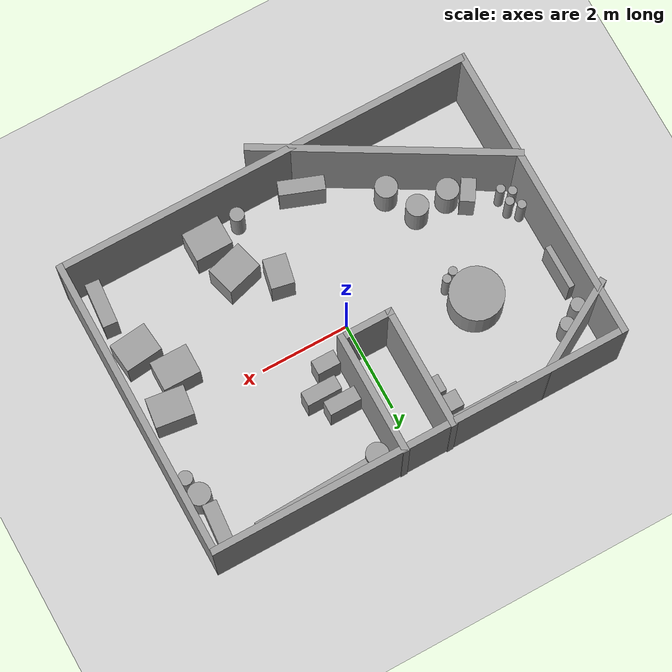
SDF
<sdf version="1.7">
 <world name="default">
  <light name="sun" type="directional">
   <pose>0 0 10 0 -0 0</pose>
   <diffuse>0.8 0.8 0.8 1</diffuse>
   <specular>0.2 0.2 0.2 1</specular>
   <attenuation>
    <range>1000</range>
    <constant>0.9</constant>
    <linear>0.01</linear>
    <quadratic>0.001</quadratic>
   </attenuation>
   <direction>-0.5 0.1 -0.9</direction>
   <spot><inner_angle>0</inner_angle><outer_angle>0</outer_angle><falloff>0</falloff></spot>
  </light>
  <model name="ground_plane">
   <static>1</static>
   <link name="link">
    <collision name="collision">
     <geometry><plane><normal>0 0 1</normal><size>100 100</size></plane></geometry>
     <surface>
      <contact><collide_bitmask>65535</collide_bitmask></contact>
      <friction><ode><mu>100</mu><mu2>50</mu2></ode></friction>
     </surface>
    </collision>
    <visual name="visual">
     <cast_shadows>0</cast_shadows>
     <geometry><plane><normal>0 0 1</normal><size>100 100</size></plane></geometry>
     <material>
      <script><uri>file://media/materials/scripts/gazebo.material</uri><name>Gazebo/Grey</name></script>
     </material>
    </visual>
   </link>
  </model>
  <gravity>0 0 -9.8</gravity>
  <magnetic_field>6e-06 2.3e-05 -4.2e-05</magnetic_field>
  <atmosphere type="adiabatic"/>
  <physics type="ode">
   <max_step_size>0.001</max_step_size>
   <real_time_factor>1</real_time_factor>
   <real_time_update_rate>1000</real_time_update_rate>
  </physics>
  <scene><ambient>0.4 0.4 0.4 1</ambient><background>0.7 0.7 0.7 1</background><shadows>1</shadows></scene>
  <spherical_coordinates>
   <surface_model>EARTH_WGS84</surface_model>
   <latitude_deg>0</latitude_deg>
   <longitude_deg>0</longitude_deg>
   <elevation>0</elevation>
   <heading_deg>0</heading_deg>
  </spherical_coordinates>
  <model name="Untitled">
   <pose>0.040154 -0.243449 0 0 -0 0</pose>
   <link name="Wall_19">
    <collision name="Wall_19_Collision">
     <geometry><box><size>9.5 0.15 2.5</size></box></geometry>
     <pose>0 0 1.25 0 -0 0</pose>
    </collision>
    <visual name="Wall_19_Visual">
     <pose>0 0 1.25 0 -0 0</pose>
     <geometry><box><size>9.5 0.15 2.5</size></box></geometry>
     <material>
      <script><uri>file://media/materials/scripts/gazebo.material</uri><name>Gazebo/Grey</name></script>
      <ambient>1 1 1 1</ambient>
     </material>
     <meta><layer>0</layer></meta>
    </visual>
    <pose>0.065155 -3.08057 0 0 -0 3.14159</pose>
   </link>
   <link name="Wall_24">
    <collision name="Wall_24_Collision">
     <geometry><box><size>6.75 0.15 2.5</size></box></geometry>
     <pose>0 0 1.25 0 -0 0</pose>
    </collision>
    <visual name="Wall_24_Visual">
     <pose>0 0 1.25 0 -0 0</pose>
     <geometry><box><size>6.75 0.15 2.5</size></box></geometry>
     <material>
      <script><uri>file://media/materials/scripts/gazebo.material</uri><name>Gazebo/Grey</name></script>
      <ambient>1 1 1 1</ambient>
     </material>
     <meta><layer>0</layer></meta>
    </visual>
    <pose>-4.60984 0.219426 0 0 -0 1.5708</pose>
   </link>
   <link name="Wall_25">
    <collision name="Wall_25_Collision">
     <geometry><box><size>9.5 0.15 2.5</size></box></geometry>
     <pose>0 0 1.25 0 -0 0</pose>
    </collision>
    <visual name="Wall_25_Visual">
     <pose>0 0 1.25 0 -0 0</pose>
     <geometry><box><size>9.5 0.15 2.5</size></box></geometry>
     <material>
      <script><uri>file://media/materials/scripts/gazebo.material</uri><name>Gazebo/Grey</name></script>
      <ambient>1 1 1 1</ambient>
     </material>
     <meta><layer>0</layer></meta>
    </visual>
    <pose>0.065155 3.51943 0 0 -0 0</pose>
   </link>
   <link name="Wall_26">
    <collision name="Wall_26_Collision">
     <geometry><box><size>6.75 0.15 2.5</size></box></geometry>
     <pose>0 0 1.25 0 -0 0</pose>
    </collision>
    <visual name="Wall_26_Visual">
     <pose>0 0 1.25 0 -0 0</pose>
     <geometry><box><size>6.75 0.15 2.5</size></box></geometry>
     <material>
      <script><uri>file://media/materials/scripts/gazebo.material</uri><name>Gazebo/Grey</name></script>
      <ambient>1 1 1 1</ambient>
     </material>
     <meta><layer>0</layer></meta>
    </visual>
    <pose>4.74015 0.219426 0 0 -0 -1.5708</pose>
   </link>
   <link name="Wall_28">
    <collision name="Wall_28_Collision">
     <geometry><box><size>2.75 0.15 2.5</size></box></geometry>
     <pose>0 0 1.25 0 -0 0</pose>
    </collision>
    <visual name="Wall_28_Visual">
     <pose>0 0 1.25 0 -0 0</pose>
     <geometry><box><size>2.75 0.15 2.5</size></box></geometry>
     <material>
      <script><uri>file://media/materials/scripts/gazebo.material</uri><name>Gazebo/Grey</name></script>
      <ambient>1 1 1 1</ambient>
     </material>
     <meta><layer>0</layer></meta>
    </visual>
    <pose>-0.655321 2.23877 0 0 -0 -1.5708</pose>
   </link>
   <link name="Wall_29">
    <collision name="Wall_29_Collision">
     <geometry><box><size>1.25 0.15 2.5</size></box></geometry>
     <pose>0 0 1.25 0 -0 0</pose>
    </collision>
    <visual name="Wall_29_Visual">
     <pose>0 0 1.25 0 -0 0</pose>
     <geometry><box><size>1.25 0.15 2.5</size></box></geometry>
     <material>
      <script><uri>file://media/materials/scripts/gazebo.material</uri><name>Gazebo/Grey</name></script>
      <ambient>1 1 1 1</ambient>
     </material>
     <meta><layer>0</layer></meta>
    </visual>
    <pose>-0.105321 0.938769 0 0 -0 0</pose>
   </link>
   <link name="Wall_30">
    <collision name="Wall_30_Collision">
     <geometry><box><size>2.75 0.15 2.5</size></box></geometry>
     <pose>0 0 1.25 0 -0 0</pose>
    </collision>
    <visual name="Wall_30_Visual">
     <pose>0 0 1.25 0 -0 0</pose>
     <geometry><box><size>2.75 0.15 2.5</size></box></geometry>
     <material>
      <script><uri>file://media/materials/scripts/gazebo.material</uri><name>Gazebo/Grey</name></script>
      <ambient>1 1 1 1</ambient>
     </material>
     <meta><layer>0</layer></meta>
    </visual>
    <pose>0.444679 2.23877 0 0 -0 1.5708</pose>
   </link>
   <link name="Wall_32">
    <collision name="Wall_32_Collision">
     <geometry><box><size>2.25 0.15 2.5</size></box></geometry>
     <pose>0 0 1.25 0 -0 0</pose>
    </collision>
    <visual name="Wall_32_Visual">
     <pose>0 0 1.25 0 -0 0</pose>
     <geometry><box><size>2.25 0.15 2.5</size></box></geometry>
     <material>
      <script><uri>file://media/materials/scripts/gazebo.material</uri><name>Gazebo/Grey</name></script>
      <ambient>1 1 1 1</ambient>
     </material>
     <meta><layer>0</layer></meta>
    </visual>
    <pose>-3.80338 2.97879 0 0 -0 -2.61799</pose>
   </link>
   <link name="Wall_34">
    <collision name="Wall_34_Collision">
     <geometry><box><size>5.75 0.15 2.5</size></box></geometry>
     <pose>0 0 1.25 0 -0 0</pose>
    </collision>
    <visual name="Wall_34_Visual">
     <pose>0 0 1.25 0 -0 0</pose>
     <geometry><box><size>5.75 0.15 2.5</size></box></geometry>
     <material>
      <script><uri>file://media/materials/scripts/gazebo.material</uri><name>Gazebo/Grey</name></script>
      <ambient>1 1 1 1</ambient>
     </material>
     <meta><layer>0</layer></meta>
    </visual>
    <pose>-2.21818 -2.11132 0 0 -0 -0.523599</pose>
   </link>
   <static>1</static>
  </model>
  <model name="unit_box">
   <pose>2.4211 3.00637 0.499918 2e-06 6.3e-05 0.031652</pose>
   <link name="link">
    <inertial>
     <mass>1</mass>
     <inertia>
      <ixx>0.166667</ixx>
      <ixy>0</ixy>
      <ixz>0</ixz>
      <iyy>0.166667</iyy>
      <iyz>0</iyz>
      <izz>0.166667</izz>
     </inertia>
    </inertial>
    <collision name="collision"><geometry><box><size>2.62096 0.261294 1</size></box></geometry></collision>
    <visual name="visual">
     <geometry><box><size>2.62096 0.261294 1</size></box></geometry>
     <material>
      <script><name>Gazebo/Grey</name><uri>file://media/materials/scripts/gazebo.material</uri></script>
     </material>
    </visual>
   </link>
  </model>
  <model name="unit_cylinder">
   <pose>-2.60289 0.898022 0.499993 -5e-06 -4e-06 -0.000322</pose>
   <link name="link">
    <inertial>
     <mass>1</mass>
     <inertia><ixx>0.145833</ixx><ixy>0</ixy><ixz>0</ixz><iyy>0.145833</iyy><iyz>0</iyz><izz>0.125</izz></inertia>
    </inertial>
    <collision name="collision">
     <geometry><cylinder><radius>0.594135</radius><length>1</length></cylinder></geometry>
    </collision>
    <visual name="visual">
     <geometry><cylinder><radius>0.594135</radius><length>1</length></cylinder></geometry>
     <material>
      <script><name>Gazebo/Grey</name><uri>file://media/materials/scripts/gazebo.material</uri></script>
     </material>
    </visual>
   </link>
  </model>
  <model name="unit_box_0">
   <pose>4.11483 -0.050991 0.499995 -2e-06 -1e-05 -0.128217</pose>
   <link name="link">
    <inertial>
     <mass>1</mass>
     <inertia>
      <ixx>0.166667</ixx>
      <ixy>0</ixy>
      <ixz>0</ixz>
      <iyy>0.166667</iyy>
      <iyz>0</iyz>
      <izz>0.166667</izz>
     </inertia>
    </inertial>
    <collision name="collision"><geometry><box><size>0.846525 0.662942 1</size></box></geometry></collision>
    <visual name="visual">
     <geometry><box><size>0.846525 0.662942 1</size></box></geometry>
     <material>
      <script><name>Gazebo/Grey</name><uri>file://media/materials/scripts/gazebo.material</uri></script>
     </material>
    </visual>
   </link>
  </model>
  <model name="unit_box_0_clone">
   <pose>3.62881 -0.730658 0.5 0 -0 -0.005144</pose>
   <link name="link">
    <inertial>
     <mass>1</mass>
     <inertia>
      <ixx>0.166667</ixx>
      <ixy>0</ixy>
      <ixz>0</ixz>
      <iyy>0.166667</iyy>
      <iyz>0</iyz>
      <izz>0.166667</izz>
     </inertia>
    </inertial>
    <collision name="collision"><geometry><box><size>0.846525 0.662942 1</size></box></geometry></collision>
    <visual name="visual">
     <geometry><box><size>0.846525 0.662942 1</size></box></geometry>
     <material>
      <script><name>Gazebo/Grey</name><uri>file://media/materials/scripts/gazebo.material</uri></script>
     </material>
    </visual>
   </link>
  </model>
  <model name="unit_box_0_clone_0">
   <pose>1.55427 -2.0112 0.5 0 -0 0.275134</pose>
   <link name="link">
    <inertial>
     <mass>1</mass>
     <inertia>
      <ixx>0.166667</ixx>
      <ixy>0</ixy>
      <ixz>0</ixz>
      <iyy>0.166667</iyy>
      <iyz>0</iyz>
      <izz>0.166667</izz>
     </inertia>
    </inertial>
    <collision name="collision"><geometry><box><size>0.846525 0.662942 1</size></box></geometry></collision>
    <visual name="visual">
     <geometry><box><size>0.846525 0.662942 1</size></box></geometry>
     <material>
      <script><name>Gazebo/Grey</name><uri>file://media/materials/scripts/gazebo.material</uri></script>
     </material>
    </visual>
   </link>
  </model>
  <model name="unit_box_0_clone_1">
   <pose>4.1453 -1.49621 0.499995 2e-06 -1e-05 0.107179</pose>
   <link name="link">
    <inertial>
     <mass>1</mass>
     <inertia>
      <ixx>0.166667</ixx>
      <ixy>0</ixy>
      <ixz>0</ixz>
      <iyy>0.166667</iyy>
      <iyz>0</iyz>
      <izz>0.166667</izz>
     </inertia>
    </inertial>
    <collision name="collision"><geometry><box><size>0.846525 0.662942 1</size></box></geometry></collision>
    <visual name="visual">
     <geometry><box><size>0.846525 0.662942 1</size></box></geometry>
     <material>
      <script><name>Gazebo/Grey</name><uri>file://media/materials/scripts/gazebo.material</uri></script>
     </material>
    </visual>
   </link>
  </model>
  <model name="unit_box_0_clone_2">
   <pose>1.75209 -2.84511 0.5 0 -0 0.005547</pose>
   <link name="link">
    <inertial>
     <mass>1</mass>
     <inertia>
      <ixx>0.166667</ixx>
      <ixy>0</ixy>
      <ixz>0</ixz>
      <iyy>0.166667</iyy>
      <iyz>0</iyz>
      <izz>0.166667</izz>
     </inertia>
    </inertial>
    <collision name="collision"><geometry><box><size>0.846525 0.662942 1</size></box></geometry></collision>
    <visual name="visual">
     <geometry><box><size>0.846525 0.662942 1</size></box></geometry>
     <material>
      <script><name>Gazebo/Grey</name><uri>file://media/materials/scripts/gazebo.material</uri></script>
     </material>
    </visual>
   </link>
  </model>
  <model name="unit_box_0_clone_3">
   <pose>0.781152 -1.50689 0.5 0 0 -0.201909</pose>
   <link name="link">
    <inertial>
     <mass>1</mass>
     <inertia>
      <ixx>0.166667</ixx>
      <ixy>0</ixy>
      <ixz>0</ixz>
      <iyy>0.166667</iyy>
      <iyz>0</iyz>
      <izz>0.166667</izz>
     </inertia>
    </inertial>
    <collision name="collision"><geometry><box><size>0.511964 0.662942 1</size></box></geometry></collision>
    <visual name="visual">
     <geometry><box><size>0.511964 0.662942 1</size></box></geometry>
     <material>
      <script><name>Gazebo/Grey</name><uri>file://media/materials/scripts/gazebo.material</uri></script>
     </material>
    </visual>
   </link>
  </model>
  <model name="unit_cylinder_0_clone">
   <pose>-3.18118 -1.36905 0.499998 -1e-06 1e-06 -1.9e-05</pose>
   <link name="link">
    <inertial>
     <mass>1</mass>
     <inertia><ixx>0.145833</ixx><ixy>0</ixy><ixz>0</ixz><iyy>0.145833</iyy><iyz>0</iyz><izz>0.125</izz></inertia>
    </inertial>
    <collision name="collision">
     <geometry><cylinder><radius>0.248018</radius><length>1</length></cylinder></geometry>
    </collision>
    <visual name="visual">
     <geometry><cylinder><radius>0.248018</radius><length>1</length></cylinder></geometry>
     <material>
      <script><name>Gazebo/Grey</name><uri>file://media/materials/scripts/gazebo.material</uri></script>
     </material>
    </visual>
   </link>
  </model>
  <model name="unit_cylinder_0_clone_0">
   <pose>-2.44992 -1.36258 0.499992 1e-06 -1e-06 -1.2e-05</pose>
   <link name="link">
    <inertial>
     <mass>1</mass>
     <inertia><ixx>0.145833</ixx><ixy>0</ixy><ixz>0</ixz><iyy>0.145833</iyy><iyz>0</iyz><izz>0.125</izz></inertia>
    </inertial>
    <collision name="collision">
     <geometry><cylinder><radius>0.248018</radius><length>1</length></cylinder></geometry>
    </collision>
    <visual name="visual">
     <geometry><cylinder><radius>0.248018</radius><length>1</length></cylinder></geometry>
     <material>
      <script><name>Gazebo/Grey</name><uri>file://media/materials/scripts/gazebo.material</uri></script>
     </material>
    </visual>
   </link>
  </model>
  <model name="unit_cylinder_0_clone_1">
   <pose>-2.07314 -2.03018 0.499992 1e-06 -1e-06 -1.9e-05</pose>
   <link name="link">
    <inertial>
     <mass>1</mass>
     <inertia><ixx>0.145833</ixx><ixy>0</ixy><ixz>0</ixz><iyy>0.145833</iyy><iyz>0</iyz><izz>0.125</izz></inertia>
    </inertial>
    <collision name="collision">
     <geometry><cylinder><radius>0.248018</radius><length>1</length></cylinder></geometry>
    </collision>
    <visual name="visual">
     <geometry><cylinder><radius>0.248018</radius><length>1</length></cylinder></geometry>
     <material>
      <script><name>Gazebo/Grey</name><uri>file://media/materials/scripts/gazebo.material</uri></script>
     </material>
    </visual>
   </link>
  </model>
  <model name="unit_box_1">
   <pose>1.2214 1.15406 0.499996 -3e-06 -9e-06 -0.00053</pose>
   <link name="link">
    <inertial>
     <mass>1</mass>
     <inertia>
      <ixx>0.166667</ixx>
      <ixy>0</ixy>
      <ixz>0</ixz>
      <iyy>0.166667</iyy>
      <iyz>0</iyz>
      <izz>0.166667</izz>
     </inertia>
    </inertial>
    <collision name="collision"><geometry><box><size>0.78735 0.321828 1</size></box></geometry></collision>
    <visual name="visual">
     <geometry><box><size>0.78735 0.321828 1</size></box></geometry>
     <material>
      <script><name>Gazebo/Grey</name><uri>file://media/materials/scripts/gazebo.material</uri></script>
     </material>
    </visual>
   </link>
  </model>
  <model name="unit_box_1_clone">
   <pose>0.854096 0.674374 0.5 0 -0 -0.00012</pose>
   <link name="link">
    <inertial>
     <mass>1</mass>
     <inertia>
      <ixx>0.166667</ixx>
      <ixy>0</ixy>
      <ixz>0</ixz>
      <iyy>0.166667</iyy>
      <iyz>0</iyz>
      <izz>0.166667</izz>
     </inertia>
    </inertial>
    <collision name="collision"><geometry><box><size>0.519182 0.321828 1</size></box></geometry></collision>
    <visual name="visual">
     <geometry><box><size>0.519182 0.321828 1</size></box></geometry>
     <material>
      <script><name>Gazebo/Grey</name><uri>file://media/materials/scripts/gazebo.material</uri></script>
     </material>
    </visual>
   </link>
  </model>
  <model name="unit_box_1_clone_0">
   <pose>0.944126 1.54933 0.5 0 -0 -5e-06</pose>
   <link name="link">
    <inertial>
     <mass>1</mass>
     <inertia>
      <ixx>0.166667</ixx>
      <ixy>0</ixy>
      <ixz>0</ixz>
      <iyy>0.166667</iyy>
      <iyz>0</iyz>
      <izz>0.166667</izz>
     </inertia>
    </inertial>
    <collision name="collision"><geometry><box><size>0.715986 0.321828 1</size></box></geometry></collision>
    <visual name="visual">
     <geometry><box><size>0.715986 0.321828 1</size></box></geometry>
     <material>
      <script><name>Gazebo/Grey</name><uri>file://media/materials/scripts/gazebo.material</uri></script>
     </material>
    </visual>
   </link>
  </model>
  <model name="unit_box_1_clone_1">
   <pose>4.38867 2.60153 0.5 1e-06 -0 1.49163</pose>
   <link name="link">
    <inertial>
     <mass>1</mass>
     <inertia>
      <ixx>0.166667</ixx>
      <ixy>0</ixy>
      <ixz>0</ixz>
      <iyy>0.166667</iyy>
      <iyz>0</iyz>
      <izz>0.166667</izz>
     </inertia>
    </inertial>
    <collision name="collision"><geometry><box><size>1 0.321828 1</size></box></geometry></collision>
    <visual name="visual">
     <geometry><box><size>1 0.321828 1</size></box></geometry>
     <material>
      <script><name>Gazebo/Grey</name><uri>file://media/materials/scripts/gazebo.material</uri></script>
     </material>
    </visual>
   </link>
  </model>
  <model name="unit_cylinder_0_clone_1_clone">
   <pose>4.44032 1.84705 0.499998 -1e-06 1e-06 -0.005717</pose>
   <link name="link">
    <inertial>
     <mass>1</mass>
     <inertia><ixx>0.145833</ixx><ixy>0</ixy><ixz>0</ixz><iyy>0.145833</iyy><iyz>0</iyz><izz>0.125</izz></inertia>
    </inertial>
    <collision name="collision">
     <geometry><cylinder><radius>0.248018</radius><length>1</length></cylinder></geometry>
    </collision>
    <visual name="visual">
     <geometry><cylinder><radius>0.248018</radius><length>1</length></cylinder></geometry>
     <material>
      <script><name>Gazebo/Grey</name><uri>file://media/materials/scripts/gazebo.material</uri></script>
     </material>
    </visual>
   </link>
  </model>
  <model name="unit_cylinder_0_clone_1_clone_0">
   <pose>0.853981 2.87092 0.499992 2e-06 -1e-06 -1.9e-05</pose>
   <link name="link">
    <inertial>
     <mass>1</mass>
     <inertia><ixx>0.145833</ixx><ixy>0</ixy><ixz>0</ixz><iyy>0.145833</iyy><iyz>0</iyz><izz>0.125</izz></inertia>
    </inertial>
    <collision name="collision">
     <geometry><cylinder><radius>0.248018</radius><length>1</length></cylinder></geometry>
    </collision>
    <visual name="visual">
     <geometry><cylinder><radius>0.248018</radius><length>1</length></cylinder></geometry>
     <material>
      <script><name>Gazebo/Grey</name><uri>file://media/materials/scripts/gazebo.material</uri></script>
     </material>
    </visual>
   </link>
  </model>
  <model name="unit_box_2">
   <pose>-1.62109 3.02486 0.499991 1e-06 1e-06 -0.002108</pose>
   <link name="link">
    <inertial>
     <mass>1</mass>
     <inertia>
      <ixx>0.166667</ixx>
      <ixy>0</ixy>
      <ixz>0</ixz>
      <iyy>0.166667</iyy>
      <iyz>0</iyz>
      <izz>0.166667</izz>
     </inertia>
    </inertial>
    <collision name="collision"><geometry><box><size>1.53211 0.235027 1</size></box></geometry></collision>
    <visual name="visual">
     <geometry><box><size>1.53211 0.235027 1</size></box></geometry>
     <material>
      <script><name>Gazebo/Grey</name><uri>file://media/materials/scripts/gazebo.material</uri></script>
     </material>
    </visual>
   </link>
  </model>
  <model name="unit_box_1_clone_clone">
   <pose>-3.5499 -1.14744 0.5 0 -0 1.00677</pose>
   <link name="link">
    <inertial>
     <mass>1</mass>
     <inertia>
      <ixx>0.166667</ixx>
      <ixy>0</ixy>
      <ixz>0</ixz>
      <iyy>0.166667</iyy>
      <iyz>0</iyz>
      <izz>0.166667</izz>
     </inertia>
    </inertial>
    <collision name="collision"><geometry><box><size>0.519182 0.321828 1</size></box></geometry></collision>
    <visual name="visual">
     <geometry><box><size>0.519182 0.321828 1</size></box></geometry>
     <material>
      <script><name>Gazebo/Grey</name><uri>file://media/materials/scripts/gazebo.material</uri></script>
     </material>
    </visual>
   </link>
  </model>
  <model name="unit_cylinder_0_clone_0_clone">
   <pose>-4.32306 2.11763 0.499998 0 0 -1.2e-05</pose>
   <link name="link">
    <inertial>
     <mass>1</mass>
     <inertia><ixx>0.145833</ixx><ixy>0</ixy><ixz>0</ixz><iyy>0.145833</iyy><iyz>0</iyz><izz>0.125</izz></inertia>
    </inertial>
    <collision name="collision">
     <geometry><cylinder><radius>0.159231</radius><length>1</length></cylinder></geometry>
    </collision>
    <visual name="visual">
     <geometry><cylinder><radius>0.159231</radius><length>1</length></cylinder></geometry>
     <material>
      <script><name>Gazebo/Grey</name><uri>file://media/materials/scripts/gazebo.material</uri></script>
     </material>
    </visual>
   </link>
  </model>
  <model name="unit_cylinder_0_clone_0_clone_clone">
   <pose>-3.92307 2.37258 0.499992 -0 -0 -0.000109</pose>
   <link name="link">
    <inertial>
     <mass>1</mass>
     <inertia><ixx>0.145833</ixx><ixy>0</ixy><ixz>0</ixz><iyy>0.145833</iyy><iyz>0</iyz><izz>0.125</izz></inertia>
    </inertial>
    <collision name="collision">
     <geometry><cylinder><radius>0.159231</radius><length>1</length></cylinder></geometry>
    </collision>
    <visual name="visual">
     <geometry><cylinder><radius>0.159231</radius><length>1</length></cylinder></geometry>
     <material>
      <script><name>Gazebo/Grey</name><uri>file://media/materials/scripts/gazebo.material</uri></script>
     </material>
    </visual>
   </link>
  </model>
  <model name="unit_cylinder_0_clone_0_clone_clone_0">
   <pose>0.958131 -3.00951 0.499998 0 0 -1.2e-05</pose>
   <link name="link">
    <inertial>
     <mass>1</mass>
     <inertia><ixx>0.145833</ixx><ixy>0</ixy><ixz>0</ixz><iyy>0.145833</iyy><iyz>0</iyz><izz>0.125</izz></inertia>
    </inertial>
    <collision name="collision">
     <geometry><cylinder><radius>0.159231</radius><length>1</length></cylinder></geometry>
    </collision>
    <visual name="visual">
     <geometry><cylinder><radius>0.159231</radius><length>1</length></cylinder></geometry>
     <material>
      <script><name>Gazebo/Grey</name><uri>file://media/materials/scripts/gazebo.material</uri></script>
     </material>
    </visual>
   </link>
  </model>
  <model name="unit_box_1_clone_1_clone">
   <pose>4.33945 -2.67163 0.5 1e-06 -0 1.49163</pose>
   <link name="link">
    <inertial>
     <mass>1</mass>
     <inertia>
      <ixx>0.166667</ixx>
      <ixy>0</ixy>
      <ixz>0</ixz>
      <iyy>0.166667</iyy>
      <iyz>0</iyz>
      <izz>0.166667</izz>
     </inertia>
    </inertial>
    <collision name="collision"><geometry><box><size>1 0.321828 1</size></box></geometry></collision>
    <visual name="visual">
     <geometry><box><size>1 0.321828 1</size></box></geometry>
     <material>
      <script><name>Gazebo/Grey</name><uri>file://media/materials/scripts/gazebo.material</uri></script>
     </material>
    </visual>
   </link>
  </model>
  <model name="unit_box_3">
   <pose>-1.03641 2.64222 0.499999 -3e-06 -3e-06 -0.000213</pose>
   <link name="link">
    <inertial>
     <mass>1</mass>
     <inertia>
      <ixx>0.166667</ixx>
      <ixy>0</ixy>
      <ixz>0</ixz>
      <iyy>0.166667</iyy>
      <iyz>0</iyz>
      <izz>0.166667</izz>
     </inertia>
    </inertial>
    <collision name="collision"><geometry><box><size>0.345591 0.379349 1</size></box></geometry></collision>
    <visual name="visual">
     <geometry><box><size>0.345591 0.379349 1</size></box></geometry>
     <material>
      <script><name>Gazebo/Grey</name><uri>file://media/materials/scripts/gazebo.material</uri></script>
     </material>
    </visual>
   </link>
  </model>
  <model name="unit_box_3_clone">
   <pose>-0.8747 2.19502 0.500001 1e-06 2e-06 -1.9e-05</pose>
   <link name="link">
    <inertial>
     <mass>1</mass>
     <inertia>
      <ixx>0.166667</ixx>
      <ixy>0</ixy>
      <ixz>0</ixz>
      <iyy>0.166667</iyy>
      <iyz>0</iyz>
      <izz>0.166667</izz>
     </inertia>
    </inertial>
    <collision name="collision"><geometry><box><size>0.345591 0.379349 1</size></box></geometry></collision>
    <visual name="visual">
     <geometry><box><size>0.345591 0.379349 1</size></box></geometry>
     <material>
      <script><name>Gazebo/Grey</name><uri>file://media/materials/scripts/gazebo.material</uri></script>
     </material>
    </visual>
   </link>
  </model>
  <model name="unit_cylinder_0_clone_0_clone_clone_clone">
   <pose>4.53405 1.42138 0.499992 0 -0 -0.000109</pose>
   <link name="link">
    <inertial>
     <mass>1</mass>
     <inertia><ixx>0.145833</ixx><ixy>0</ixy><ixz>0</ixz><iyy>0.145833</iyy><iyz>0</iyz><izz>0.125</izz></inertia>
    </inertial>
    <collision name="collision">
     <geometry><cylinder><radius>0.159231</radius><length>1</length></cylinder></geometry>
    </collision>
    <visual name="visual">
     <geometry><cylinder><radius>0.159231</radius><length>1</length></cylinder></geometry>
     <material>
      <script><name>Gazebo/Grey</name><uri>file://media/materials/scripts/gazebo.material</uri></script>
     </material>
    </visual>
   </link>
  </model>
  <model name="unit_box_1_clone_1_clone_clone">
   <pose>-0.528262 -2.91795 0.499996 -4e-06 -8e-06 2.7875</pose>
   <link name="link">
    <inertial>
     <mass>1</mass>
     <inertia>
      <ixx>0.166667</ixx>
      <ixy>0</ixy>
      <ixz>0</ixz>
      <iyy>0.166667</iyy>
      <iyz>0</iyz>
      <izz>0.166667</izz>
     </inertia>
    </inertial>
    <collision name="collision"><geometry><box><size>1 0.321828 1</size></box></geometry></collision>
    <visual name="visual">
     <geometry><box><size>1 0.321828 1</size></box></geometry>
     <material>
      <script><name>Gazebo/Grey</name><uri>file://media/materials/scripts/gazebo.material</uri></script>
     </material>
    </visual>
   </link>
  </model>
  <model name="unit_cylinder_0">
   <pose>-2.21408 0.326634 0.499902 0 -0 0.000463</pose>
   <link name="link">
    <inertial>
     <mass>1</mass>
     <inertia><ixx>0.145833</ixx><ixy>0</ixy><ixz>0</ixz><iyy>0.145833</iyy><iyz>0</iyz><izz>0.125</izz></inertia>
    </inertial>
    <collision name="collision">
     <geometry><cylinder><radius>0.096988</radius><length>1</length></cylinder></geometry>
    </collision>
    <visual name="visual">
     <geometry><cylinder><radius>0.096988</radius><length>1</length></cylinder></geometry>
     <material>
      <script><name>Gazebo/Grey</name><uri>file://media/materials/scripts/gazebo.material</uri></script>
     </material>
    </visual>
   </link>
  </model>
  <model name="unit_cylinder_0_clone_2">
   <pose>-2.40169 0.236832 0.499995 0 -0 0.002508</pose>
   <link name="link">
    <inertial>
     <mass>1</mass>
     <inertia><ixx>0.145833</ixx><ixy>0</ixy><ixz>0</ixz><iyy>0.145833</iyy><iyz>0</iyz><izz>0.125</izz></inertia>
    </inertial>
    <collision name="collision">
     <geometry><cylinder><radius>0.0969878</radius><length>1</length></cylinder></geometry>
    </collision>
    <visual name="visual">
     <geometry><cylinder><radius>0.0969878</radius><length>1</length></cylinder></geometry>
     <material>
      <script><name>Gazebo/Grey</name><uri>file://media/materials/scripts/gazebo.material</uri></script>
     </material>
    </visual>
   </link>
  </model>
  <model name="unit_cylinder_0_clone_3">
   <pose>-4.36104 -0.684499 0.499994 0 -0 0.001458</pose>
   <link name="link">
    <inertial>
     <mass>1</mass>
     <inertia><ixx>0.145833</ixx><ixy>0</ixy><ixz>0</ixz><iyy>0.145833</iyy><iyz>0</iyz><izz>0.125</izz></inertia>
    </inertial>
    <collision name="collision">
     <geometry><cylinder><radius>0.0969878</radius><length>1</length></cylinder></geometry>
    </collision>
    <visual name="visual">
     <geometry><cylinder><radius>0.0969878</radius><length>1</length></cylinder></geometry>
     <material>
      <script><name>Gazebo/Grey</name><uri>file://media/materials/scripts/gazebo.material</uri></script>
     </material>
    </visual>
   </link>
  </model>
  <model name="unit_cylinder_0_clone_4">
   <pose>-4.38213 -0.329616 0.499996 0 -0 0.001458</pose>
   <link name="link">
    <inertial>
     <mass>1</mass>
     <inertia><ixx>0.145833</ixx><ixy>0</ixy><ixz>0</ixz><iyy>0.145833</iyy><iyz>0</iyz><izz>0.125</izz></inertia>
    </inertial>
    <collision name="collision">
     <geometry><cylinder><radius>0.0969878</radius><length>1</length></cylinder></geometry>
    </collision>
    <visual name="visual">
     <geometry><cylinder><radius>0.0969878</radius><length>1</length></cylinder></geometry>
     <material>
      <script><name>Gazebo/Grey</name><uri>file://media/materials/scripts/gazebo.material</uri></script>
     </material>
    </visual>
   </link>
  </model>
  <model name="unit_cylinder_0_clone_5">
   <pose>-4.19444 -0.513153 0.499994 0 -0 0.001458</pose>
   <link name="link">
    <inertial>
     <mass>1</mass>
     <inertia><ixx>0.145833</ixx><ixy>0</ixy><ixz>0</ixz><iyy>0.145833</iyy><iyz>0</iyz><izz>0.125</izz></inertia>
    </inertial>
    <collision name="collision">
     <geometry><cylinder><radius>0.0969878</radius><length>1</length></cylinder></geometry>
    </collision>
    <visual name="visual">
     <geometry><cylinder><radius>0.0969878</radius><length>1</length></cylinder></geometry>
     <material>
      <script><name>Gazebo/Grey</name><uri>file://media/materials/scripts/gazebo.material</uri></script>
     </material>
    </visual>
   </link>
  </model>
  <model name="unit_cylinder_0_clone_6">
   <pose>-4.16171 -0.835237 0.499995 0 -0 0.001456</pose>
   <link name="link">
    <inertial>
     <mass>1</mass>
     <inertia><ixx>0.145833</ixx><ixy>0</ixy><ixz>0</ixz><iyy>0.145833</iyy><iyz>0</iyz><izz>0.125</izz></inertia>
    </inertial>
    <collision name="collision">
     <geometry><cylinder><radius>0.0969878</radius><length>1</length></cylinder></geometry>
    </collision>
    <visual name="visual">
     <geometry><cylinder><radius>0.0969878</radius><length>1</length></cylinder></geometry>
     <material>
      <script><name>Gazebo/Grey</name><uri>file://media/materials/scripts/gazebo.material</uri></script>
     </material>
    </visual>
   </link>
  </model>
  <model name="unit_box_4">
   <pose>-4.40401 1.22979 0.5 0 -1e-06 -1.3e-05</pose>
   <link name="link">
    <inertial>
     <mass>1</mass>
     <inertia>
      <ixx>0.166667</ixx>
      <ixy>0</ixy>
      <ixz>0</ixz>
      <iyy>0.166667</iyy>
      <iyz>0</iyz>
      <izz>0.166667</izz>
     </inertia>
    </inertial>
    <collision name="collision"><geometry><box><size>0.130781 1 1</size></box></geometry></collision>
    <visual name="visual">
     <geometry><box><size>0.130781 1 1</size></box></geometry>
     <material>
      <script><name>Gazebo/Grey</name><uri>file://media/materials/scripts/gazebo.material</uri></script>
     </material>
    </visual>
   </link>
  </model>
 </world>
</sdf>
